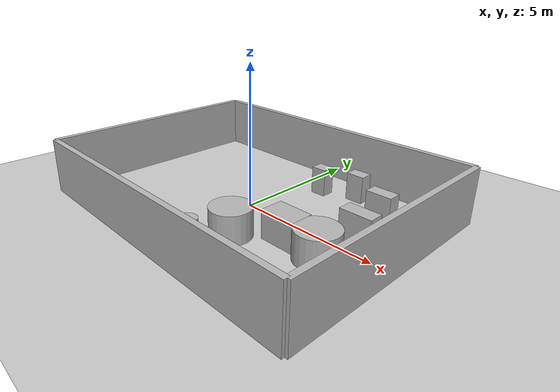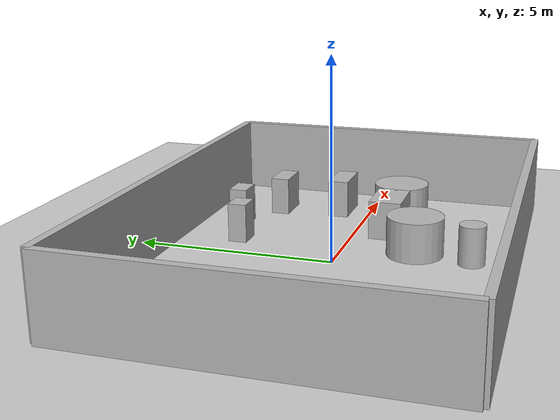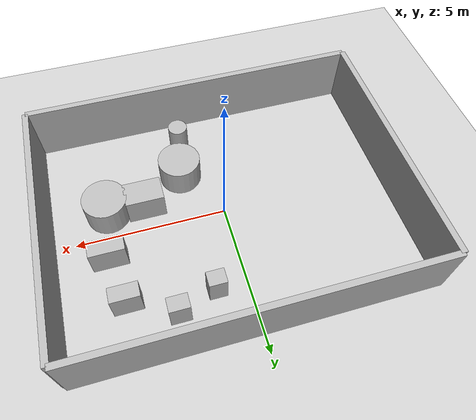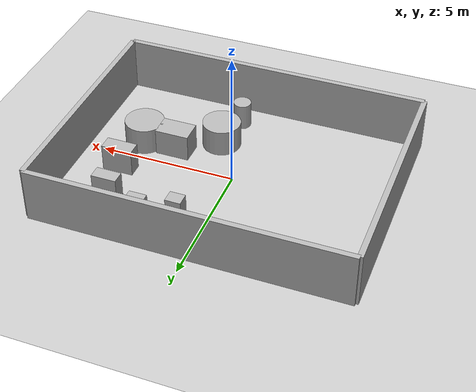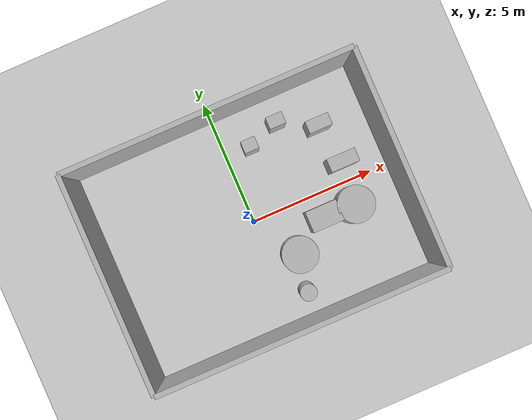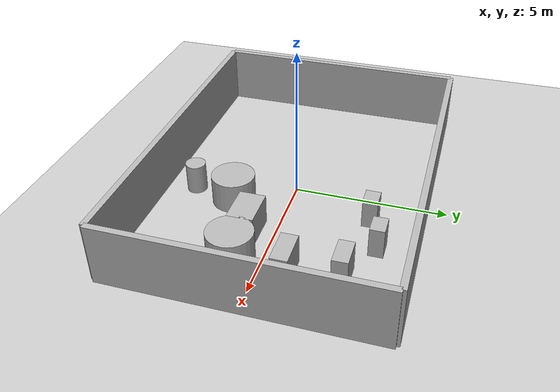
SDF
<?xml version="1.0"?>
<sdf version="1.6">
  <world name="env_68">

    <include><uri>model://ground_plane</uri></include>
    <include><uri>model://sun</uri></include>

    <!-- WALLS -->
    <model name="wall_north"><static>true</static><pose>0 4.307612639877768 1 0 0 0</pose>
      <link name="link"><collision name="collision">
        <geometry><box><size>11.492583022870996 0.2 2</size></box></geometry>
      </collision><visual name="visual">
        <geometry><box><size>11.492583022870996 0.2 2</size></box></geometry>
      </visual></link>
    </model>

    <model name="wall_south"><static>true</static><pose>0 -4.307612639877768 1 0 0 0</pose>
      <link name="link"><collision name="collision">
        <geometry><box><size>11.492583022870996 0.2 2</size></box></geometry>
      </collision><visual name="visual">
        <geometry><box><size>11.492583022870996 0.2 2</size></box></geometry>
      </visual></link>
    </model>

    <model name="wall_east"><static>true</static><pose>5.746291511435498 0 1 0 0 1.57</pose>
      <link name="link"><collision name="collision">
        <geometry><box><size>8.615225279755537 0.2 2</size></box></geometry>
      </collision><visual name="visual">
        <geometry><box><size>8.615225279755537 0.2 2</size></box></geometry>
      </visual></link>
    </model>

    <model name="wall_west"><static>true</static><pose>-5.746291511435498 0 1 0 0 1.57</pose>
      <link name="link"><collision name="collision">
        <geometry><box><size>8.615225279755537 0.2 2</size></box></geometry>
      </collision><visual name="visual">
        <geometry><box><size>8.615225279755537 0.2 2</size></box></geometry>
      </visual></link>
    </model>

    <!-- SENSOR -->

    <model name="lidar_sensor">
      <static>true</static>
      <pose>0.06894141519389141 -2.9317114767887347 0.4 0 0 0</pose>
      <link name="link">
        <sensor name="lidar" type="ray">
          <pose>0 0 0 0 0 0</pose>
          <visualize>true</visualize>
          <always_on>true</always_on>
          <update_rate>10</update_rate>
          <ray>
            <scan><horizontal>
              <samples>180</samples>
              <resolution>1</resolution>
              <min_angle>-3.14159</min_angle>
              <max_angle>3.14159</max_angle>
            </horizontal></scan>
            <range><min>0.15</min><max>20.0</max><resolution>0.01</resolution></range>
          </ray>
          <plugin name="lidar_plugin" filename="liblidar_plugin.so"/>
        </sensor>
      </link>
    </model>

    <!-- OBSTACLES -->

    <model name="obstacle_0">
      <static>true</static>
      <pose>3.6935868831616894 2.4211694806835125 0.5 0 0 0</pose>
      <link name="link">
        <collision name="collision">
          <geometry><box><size>0.92 0.49 1.0</size></box></geometry>
        </collision>
        <visual name="visual">
          <geometry><box><size>0.92 0.49 1.0</size></box></geometry>
        </visual>
      </link>
    </model>

    <model name="obstacle_1">
      <static>true</static>
      <pose>2.5128505438425606 -0.8682324037787756 0.5 0 0 0</pose>
      <link name="link">
        <collision name="collision">
          <geometry><box><size>1.25 0.84 1.0</size></box></geometry>
        </collision>
        <visual name="visual">
          <geometry><box><size>1.25 0.84 1.0</size></box></geometry>
        </visual>
      </link>
    </model>

    <model name="obstacle_2">
      <static>true</static>
      <pose>2.2549415121597534 3.15935063376374 0.5 0 0 0</pose>
      <link name="link">
        <collision name="collision">
          <geometry><box><size>0.65 0.47 1.0</size></box></geometry>
        </collision>
        <visual name="visual">
          <geometry><box><size>0.65 0.47 1.0</size></box></geometry>
        </visual>
      </link>
    </model>

    <model name="obstacle_3">
      <static>true</static>
      <pose>0.8197206446210998 -3.2526871496831236 0.5 0 0 0</pose>
      <link name="link">
        <collision name="collision">
          <geometry><cylinder><radius>0.33</radius><length>1.0</length></cylinder></geometry>
        </collision>
        <visual name="visual">
          <geometry><cylinder><radius>0.33</radius><length>1.0</length></cylinder></geometry>
        </visual>
      </link>
    </model>

    <model name="obstacle_4">
      <static>true</static>
      <pose>3.7754526379862465 -0.9271136642419773 0.5 0 0 0</pose>
      <link name="link">
        <collision name="collision">
          <geometry><cylinder><radius>0.73</radius><length>1.0</length></cylinder></geometry>
        </collision>
        <visual name="visual">
          <geometry><cylinder><radius>0.73</radius><length>1.0</length></cylinder></geometry>
        </visual>
      </link>
    </model>

    <model name="obstacle_5">
      <static>true</static>
      <pose>1.0965777186900842 -1.8252381202227914 0.5 0 0 0</pose>
      <link name="link">
        <collision name="collision">
          <geometry><cylinder><radius>0.71</radius><length>1.0</length></cylinder></geometry>
        </collision>
        <visual name="visual">
          <geometry><cylinder><radius>0.71</radius><length>1.0</length></cylinder></geometry>
        </visual>
      </link>
    </model>

    <model name="obstacle_6">
      <static>true</static>
      <pose>3.9816789886554886 0.786178539771079 0.5 0 0 0</pose>
      <link name="link">
        <collision name="collision">
          <geometry><box><size>1.14 0.54 1.0</size></box></geometry>
        </collision>
        <visual name="visual">
          <geometry><box><size>1.14 0.54 1.0</size></box></geometry>
        </visual>
      </link>
    </model>

    <model name="obstacle_7">
      <static>true</static>
      <pose>0.9973963616919495 2.703321695877288 0.5 0 0 0</pose>
      <link name="link">
        <collision name="collision">
          <geometry><box><size>0.57 0.48 1.0</size></box></geometry>
        </collision>
        <visual name="visual">
          <geometry><box><size>0.57 0.48 1.0</size></box></geometry>
        </visual>
      </link>
    </model>

  </world>
</sdf>
